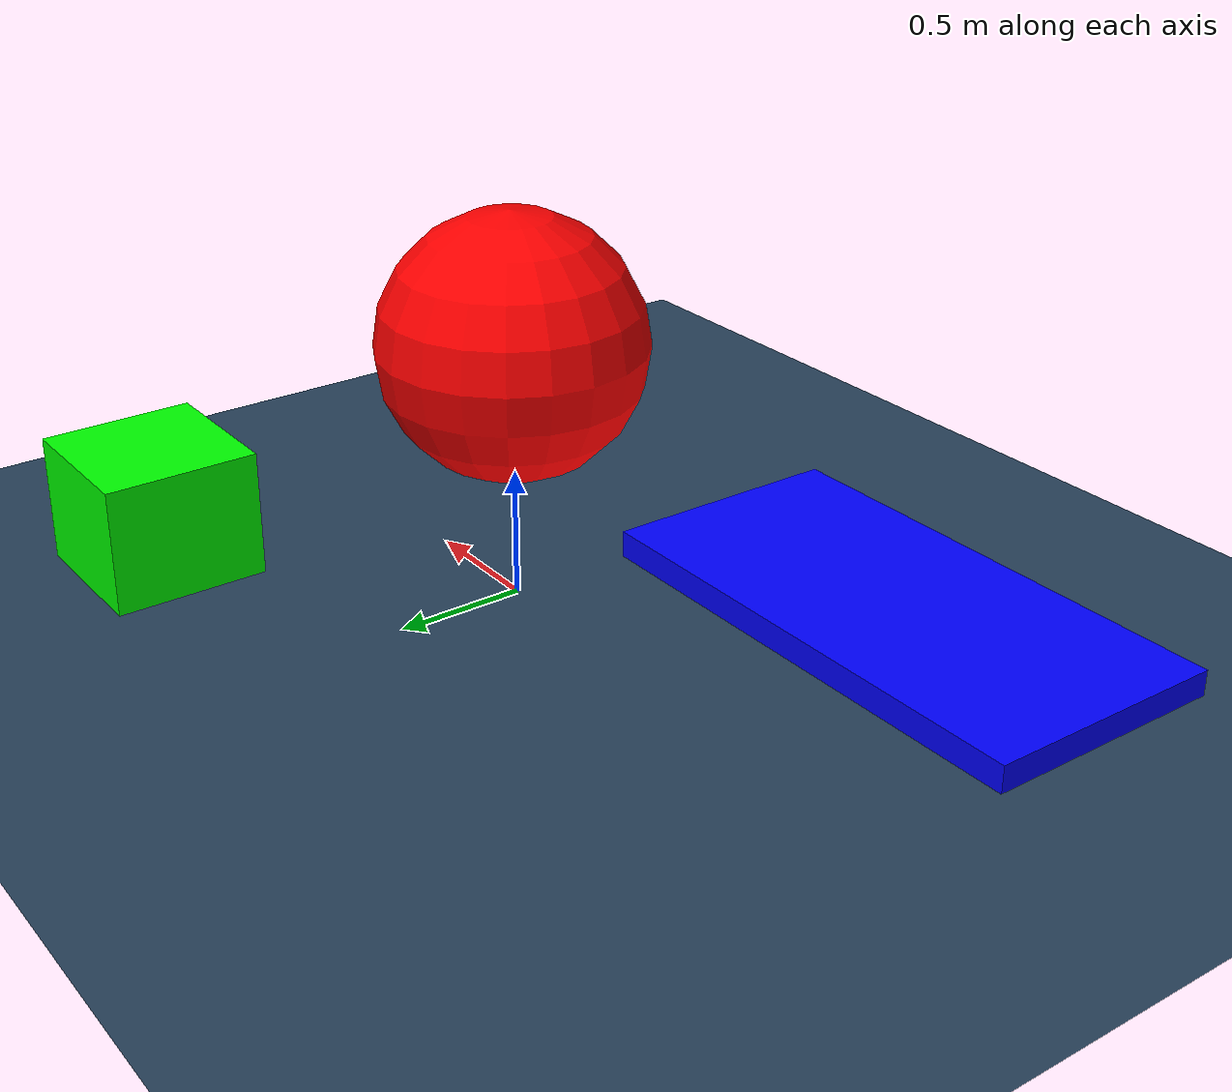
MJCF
<mujoco>
  <option timestep="0.005" gravity="0 0 -9.81"/>

  <asset>
    <texture name="grid" type="2d" builtin="checker" rgb1=".1 .2 .3" rgb2=".2 .3 .4" width="300" height="300"/>
    <material name="ground" texture="grid" texrepeat="5 5" reflectance=".2"/>
  </asset>

  <worldbody>
    <!-- Ground plane -->
    <geom name="floor" type="plane" size="5 5 0.1" material="ground"/>

    <!-- Light -->
    <light pos="0 2 5" dir="0 0 -1" directional="true"/>

    <!-- A red ball you can push around -->
    <body name="ball" pos="0 0 1">
      <joint name="ball_slide" type="slide" axis="1 0 0" limited="false"/>
      <joint name="ball_slide2" type="slide" axis="0 1 0" limited="false"/>
      <joint name="ball_spin" type="ball" limited="false"/>
      <geom name="ball_geom" type="sphere" size="0.5" rgba="1 0 0 1" mass="1"/>
    </body>

    <!-- A green block -->
    <body name="block" pos="1 1 0.25">
      <joint name="block_slide" type="slide" axis="1 0 0" limited="false"/>
      <joint name="block_slide2" type="slide" axis="0 1 0" limited="false"/>
      <geom name="block_geom" type="box" size="0.3 0.3 0.25" rgba="0 1 0 1" mass="2"/>
    </body>

    <!-- A blue ramp to slide things down -->
    <body name="ramp" pos="-1 -1 0">
      <geom name="ramp_geom" type="box" size="1 0.5 0.1" rgba="0 0 1 1" euler="0.3 0 0"/>
    </body>
  </worldbody>

  <actuator>
    <!-- Motors to control the ball (optional) -->
    <motor name="push_x" joint="ball_slide" gear="10" ctrlrange="-1 1"/>
    <motor name="push_y" joint="ball_slide2" gear="10" ctrlrange="-1 1"/>
  </actuator>

  <contact>
    <pair geom1="ball_geom" geom2="floor" solref="0.02 1"/>
  </contact>
</mujoco>
